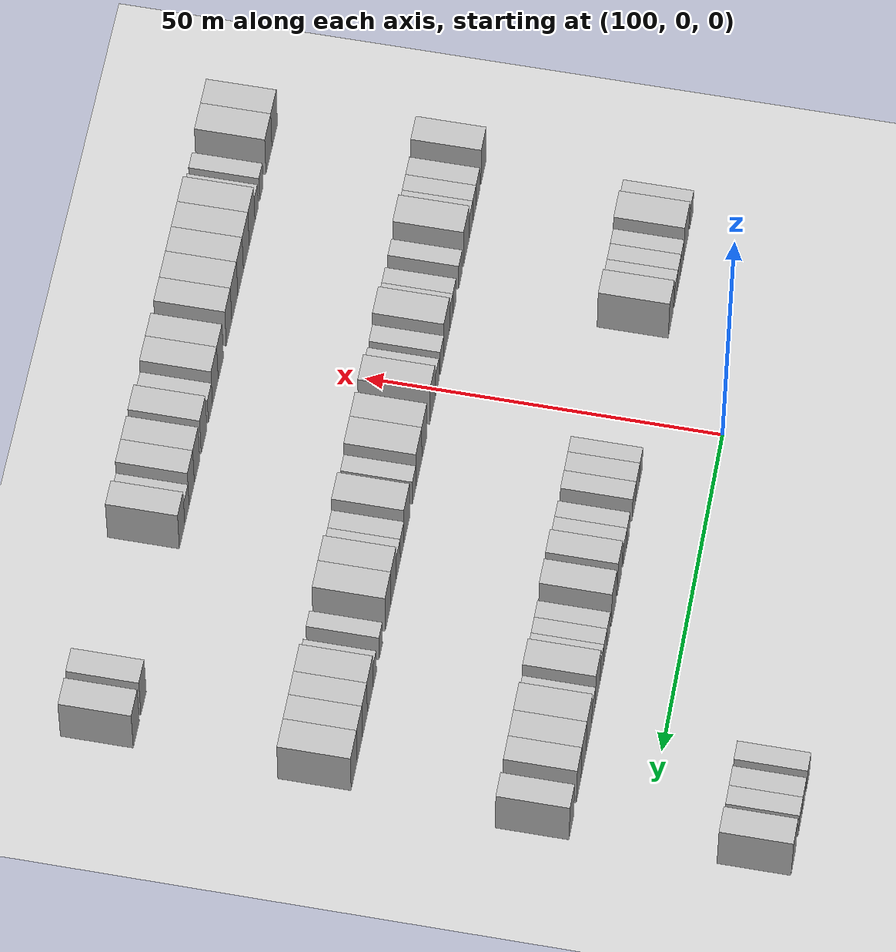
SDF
<sdf version="1.6">
 <world name="default">
  <include>
   <name>ground_plane_2</name>
   <uri>model://HANNAS_ground_plane</uri>
   <pose>100 0 0  0 0 0</pose>
  </include>
  <model name="building_578">
   <static>1</static>
   <pose>85.0000 51.3219 0 0.000000 0.000000 0.000000</pose>
   <link name="link">
    <pose>0 0 3.00 0 0 0</pose>
    <collision name="collision"><geometry><box><size>10.0000 2.8344 6.0000</size></box></geometry></collision>
    <visual name="visual">
     <cast_shadows>0</cast_shadows>
     <geometry><box><size>10.0000 2.8344 6.0000</size></box></geometry>
     <material>
      <script>
       <uri>model://HANNAS_wall/materials/scripts</uri>
       <uri>model://HANNAS_wall/materials/textures</uri>
       <name>vrc/HANNAS_wall</name>
      </script>
     </material>
    </visual>
   </link>
  </model>
  <model name="building_579">
   <static>1</static>
   <pose>85.0000 55.2294 0 0.000000 0.000000 0.000000</pose>
   <link name="link">
    <pose>0 0 3.00 0 0 0</pose>
    <collision name="collision"><geometry><box><size>10.0000 2.9806 6.0000</size></box></geometry></collision>
    <visual name="visual">
     <cast_shadows>0</cast_shadows>
     <geometry><box><size>10.0000 2.9806 6.0000</size></box></geometry>
     <material>
      <script>
       <uri>model://HANNAS_wall/materials/scripts</uri>
       <uri>model://HANNAS_wall/materials/textures</uri>
       <name>vrc/HANNAS_wall</name>
      </script>
     </material>
    </visual>
   </link>
  </model>
  <model name="building_580">
   <static>1</static>
   <pose>85.0000 58.1530 0 0.000000 0.000000 0.000000</pose>
   <link name="link">
    <pose>0 0 3.00 0 0 0</pose>
    <collision name="collision"><geometry><box><size>10.0000 2.8664 6.0000</size></box></geometry></collision>
    <visual name="visual">
     <cast_shadows>0</cast_shadows>
     <geometry><box><size>10.0000 2.8664 6.0000</size></box></geometry>
     <material>
      <script>
       <uri>model://HANNAS_wall/materials/scripts</uri>
       <uri>model://HANNAS_wall/materials/textures</uri>
       <name>vrc/HANNAS_wall</name>
      </script>
     </material>
    </visual>
   </link>
  </model>
  <model name="building_581">
   <static>1</static>
   <pose>85.0000 63.5341 0 0.000000 0.000000 0.000000</pose>
   <link name="link">
    <pose>0 0 4.50 0 0 0</pose>
    <collision name="collision"><geometry><box><size>10.0000 3.8959 9.0000</size></box></geometry></collision>
    <visual name="visual">
     <cast_shadows>0</cast_shadows>
     <geometry><box><size>10.0000 3.8959 9.0000</size></box></geometry>
     <material>
      <script>
       <uri>model://HANNAS_wall/materials/scripts</uri>
       <uri>model://HANNAS_wall/materials/textures</uri>
       <name>vrc/HANNAS_wall</name>
      </script>
     </material>
    </visual>
   </link>
  </model>
  <model name="building_797">
   <static>1</static>
   <pose>115.0000 -33.3763 0 0.000000 0.000000 0.000000</pose>
   <link name="link">
    <pose>0 0 3.00 0 0 0</pose>
    <collision name="collision"><geometry><box><size>10.0000 2.7929 6.0000</size></box></geometry></collision>
    <visual name="visual">
     <cast_shadows>0</cast_shadows>
     <geometry><box><size>10.0000 2.7929 6.0000</size></box></geometry>
     <material>
      <script>
       <uri>model://HANNAS_wall/materials/scripts</uri>
       <uri>model://HANNAS_wall/materials/textures</uri>
       <name>vrc/HANNAS_wall</name>
      </script>
     </material>
    </visual>
   </link>
  </model>
  <model name="building_798">
   <static>1</static>
   <pose>115.0000 -28.7784 0 0.000000 0.000000 0.000000</pose>
   <link name="link">
    <pose>0 0 4.50 0 0 0</pose>
    <collision name="collision"><geometry><box><size>10.0000 4.4030 9.0000</size></box></geometry></collision>
    <visual name="visual">
     <cast_shadows>0</cast_shadows>
     <geometry><box><size>10.0000 4.4030 9.0000</size></box></geometry>
     <material>
      <script>
       <uri>model://HANNAS_wall/materials/scripts</uri>
       <uri>model://HANNAS_wall/materials/textures</uri>
       <name>vrc/HANNAS_wall</name>
      </script>
     </material>
    </visual>
   </link>
  </model>
  <model name="building_799">
   <static>1</static>
   <pose>115.0000 -25.3609 0 0.000000 0.000000 0.000000</pose>
   <link name="link">
    <pose>0 0 3.00 0 0 0</pose>
    <collision name="collision"><geometry><box><size>10.0000 2.4319 6.0000</size></box></geometry></collision>
    <visual name="visual">
     <cast_shadows>0</cast_shadows>
     <geometry><box><size>10.0000 2.4319 6.0000</size></box></geometry>
     <material>
      <script>
       <uri>model://HANNAS_wall/materials/scripts</uri>
       <uri>model://HANNAS_wall/materials/textures</uri>
       <name>vrc/HANNAS_wall</name>
      </script>
     </material>
    </visual>
   </link>
  </model>
  <model name="building_800">
   <static>1</static>
   <pose>115.0000 -22.8334 0 0.000000 0.000000 0.000000</pose>
   <link name="link">
    <pose>0 0 3.00 0 0 0</pose>
    <collision name="collision"><geometry><box><size>10.0000 2.6231 6.0000</size></box></geometry></collision>
    <visual name="visual">
     <cast_shadows>0</cast_shadows>
     <geometry><box><size>10.0000 2.6231 6.0000</size></box></geometry>
     <material>
      <script>
       <uri>model://HANNAS_wall/materials/scripts</uri>
       <uri>model://HANNAS_wall/materials/textures</uri>
       <name>vrc/HANNAS_wall</name>
      </script>
     </material>
    </visual>
   </link>
  </model>
  <model name="building_801">
   <static>1</static>
   <pose>115.0000 -20.2376 0 0.000000 0.000000 0.000000</pose>
   <link name="link">
    <pose>0 0 3.00 0 0 0</pose>
    <collision name="collision"><geometry><box><size>10.0000 2.5683 6.0000</size></box></geometry></collision>
    <visual name="visual">
     <cast_shadows>0</cast_shadows>
     <geometry><box><size>10.0000 2.5683 6.0000</size></box></geometry>
     <material>
      <script>
       <uri>model://HANNAS_wall/materials/scripts</uri>
       <uri>model://HANNAS_wall/materials/textures</uri>
       <name>vrc/HANNAS_wall</name>
      </script>
     </material>
    </visual>
   </link>
  </model>
  <model name="building_802">
   <static>1</static>
   <pose>115.0000 -16.0023 0 0.000000 0.000000 0.000000</pose>
   <link name="link">
    <pose>0 0 4.50 0 0 0</pose>
    <collision name="collision"><geometry><box><size>10.0000 3.9023 9.0000</size></box></geometry></collision>
    <visual name="visual">
     <cast_shadows>0</cast_shadows>
     <geometry><box><size>10.0000 3.9023 9.0000</size></box></geometry>
     <material>
      <script>
       <uri>model://HANNAS_wall/materials/scripts</uri>
       <uri>model://HANNAS_wall/materials/textures</uri>
       <name>vrc/HANNAS_wall</name>
      </script>
     </material>
    </visual>
   </link>
  </model>
  <model name="building_803">
   <static>1</static>
   <pose>115.0000 8.6658 0 0.000000 0.000000 0.000000</pose>
   <link name="link">
    <pose>0 0 3.00 0 0 0</pose>
    <collision name="collision"><geometry><box><size>10.0000 2.4779 6.0000</size></box></geometry></collision>
    <visual name="visual">
     <cast_shadows>0</cast_shadows>
     <geometry><box><size>10.0000 2.4779 6.0000</size></box></geometry>
     <material>
      <script>
       <uri>model://HANNAS_wall/materials/scripts</uri>
       <uri>model://HANNAS_wall/materials/textures</uri>
       <name>vrc/HANNAS_wall</name>
      </script>
     </material>
    </visual>
   </link>
  </model>
  <model name="building_804">
   <static>1</static>
   <pose>115.0000 11.3984 0 0.000000 0.000000 0.000000</pose>
   <link name="link">
    <pose>0 0 3.00 0 0 0</pose>
    <collision name="collision"><geometry><box><size>10.0000 2.9875 6.0000</size></box></geometry></collision>
    <visual name="visual">
     <cast_shadows>0</cast_shadows>
     <geometry><box><size>10.0000 2.9875 6.0000</size></box></geometry>
     <material>
      <script>
       <uri>model://HANNAS_wall/materials/scripts</uri>
       <uri>model://HANNAS_wall/materials/textures</uri>
       <name>vrc/HANNAS_wall</name>
      </script>
     </material>
    </visual>
   </link>
  </model>
  <model name="building_805">
   <static>1</static>
   <pose>115.0000 14.3344 0 0.000000 0.000000 0.000000</pose>
   <link name="link">
    <pose>0 0 3.00 0 0 0</pose>
    <collision name="collision"><geometry><box><size>10.0000 2.8844 6.0000</size></box></geometry></collision>
    <visual name="visual">
     <cast_shadows>0</cast_shadows>
     <geometry><box><size>10.0000 2.8844 6.0000</size></box></geometry>
     <material>
      <script>
       <uri>model://HANNAS_wall/materials/scripts</uri>
       <uri>model://HANNAS_wall/materials/textures</uri>
       <name>vrc/HANNAS_wall</name>
      </script>
     </material>
    </visual>
   </link>
  </model>
  <model name="building_806">
   <static>1</static>
   <pose>115.0000 19.0334 0 0.000000 0.000000 0.000000</pose>
   <link name="link">
    <pose>0 0 3.00 0 0 0</pose>
    <collision name="collision"><geometry><box><size>10.0000 2.5138 6.0000</size></box></geometry></collision>
    <visual name="visual">
     <cast_shadows>0</cast_shadows>
     <geometry><box><size>10.0000 2.5138 6.0000</size></box></geometry>
     <material>
      <script>
       <uri>model://HANNAS_wall/materials/scripts</uri>
       <uri>model://HANNAS_wall/materials/textures</uri>
       <name>vrc/HANNAS_wall</name>
      </script>
     </material>
    </visual>
   </link>
  </model>
  <model name="building_807">
   <static>1</static>
   <pose>115.0000 21.6853 0 0.000000 0.000000 0.000000</pose>
   <link name="link">
    <pose>0 0 3.00 0 0 0</pose>
    <collision name="collision"><geometry><box><size>10.0000 2.7900 6.0000</size></box></geometry></collision>
    <visual name="visual">
     <cast_shadows>0</cast_shadows>
     <geometry><box><size>10.0000 2.7900 6.0000</size></box></geometry>
     <material>
      <script>
       <uri>model://HANNAS_wall/materials/scripts</uri>
       <uri>model://HANNAS_wall/materials/textures</uri>
       <name>vrc/HANNAS_wall</name>
      </script>
     </material>
    </visual>
   </link>
  </model>
  <model name="building_808">
   <static>1</static>
   <pose>115.0000 25.9015 0 0.000000 0.000000 0.000000</pose>
   <link name="link">
    <pose>0 0 4.50 0 0 0</pose>
    <collision name="collision"><geometry><box><size>10.0000 3.6422 9.0000</size></box></geometry></collision>
    <visual name="visual">
     <cast_shadows>0</cast_shadows>
     <geometry><box><size>10.0000 3.6422 9.0000</size></box></geometry>
     <material>
      <script>
       <uri>model://HANNAS_wall/materials/scripts</uri>
       <uri>model://HANNAS_wall/materials/textures</uri>
       <name>vrc/HANNAS_wall</name>
      </script>
     </material>
    </visual>
   </link>
  </model>
  <model name="building_809">
   <static>1</static>
   <pose>115.0000 30.6529 0 0.000000 0.000000 0.000000</pose>
   <link name="link">
    <pose>0 0 4.50 0 0 0</pose>
    <collision name="collision"><geometry><box><size>10.0000 3.8607 9.0000</size></box></geometry></collision>
    <visual name="visual">
     <cast_shadows>0</cast_shadows>
     <geometry><box><size>10.0000 3.8607 9.0000</size></box></geometry>
     <material>
      <script>
       <uri>model://HANNAS_wall/materials/scripts</uri>
       <uri>model://HANNAS_wall/materials/textures</uri>
       <name>vrc/HANNAS_wall</name>
      </script>
     </material>
    </visual>
   </link>
  </model>
  <model name="building_810">
   <static>1</static>
   <pose>115.0000 34.8802 0 0.000000 0.000000 0.000000</pose>
   <link name="link">
    <pose>0 0 3.00 0 0 0</pose>
    <collision name="collision"><geometry><box><size>10.0000 2.5939 6.0000</size></box></geometry></collision>
    <visual name="visual">
     <cast_shadows>0</cast_shadows>
     <geometry><box><size>10.0000 2.5939 6.0000</size></box></geometry>
     <material>
      <script>
       <uri>model://HANNAS_wall/materials/scripts</uri>
       <uri>model://HANNAS_wall/materials/textures</uri>
       <name>vrc/HANNAS_wall</name>
      </script>
     </material>
    </visual>
   </link>
  </model>
  <model name="building_811">
   <static>1</static>
   <pose>115.0000 37.4185 0 0.000000 0.000000 0.000000</pose>
   <link name="link">
    <pose>0 0 3.00 0 0 0</pose>
    <collision name="collision"><geometry><box><size>10.0000 2.4828 6.0000</size></box></geometry></collision>
    <visual name="visual">
     <cast_shadows>0</cast_shadows>
     <geometry><box><size>10.0000 2.4828 6.0000</size></box></geometry>
     <material>
      <script>
       <uri>model://HANNAS_wall/materials/scripts</uri>
       <uri>model://HANNAS_wall/materials/textures</uri>
       <name>vrc/HANNAS_wall</name>
      </script>
     </material>
    </visual>
   </link>
  </model>
  <model name="building_812">
   <static>1</static>
   <pose>115.0000 39.9613 0 0.000000 0.000000 0.000000</pose>
   <link name="link">
    <pose>0 0 3.00 0 0 0</pose>
    <collision name="collision"><geometry><box><size>10.0000 2.6028 6.0000</size></box></geometry></collision>
    <visual name="visual">
     <cast_shadows>0</cast_shadows>
     <geometry><box><size>10.0000 2.6028 6.0000</size></box></geometry>
     <material>
      <script>
       <uri>model://HANNAS_wall/materials/scripts</uri>
       <uri>model://HANNAS_wall/materials/textures</uri>
       <name>vrc/HANNAS_wall</name>
      </script>
     </material>
    </visual>
   </link>
  </model>
  <model name="building_813">
   <static>1</static>
   <pose>115.0000 43.2933 0 0.000000 0.000000 0.000000</pose>
   <link name="link">
    <pose>0 0 4.50 0 0 0</pose>
    <collision name="collision"><geometry><box><size>10.0000 4.0612 9.0000</size></box></geometry></collision>
    <visual name="visual">
     <cast_shadows>0</cast_shadows>
     <geometry><box><size>10.0000 4.0612 9.0000</size></box></geometry>
     <material>
      <script>
       <uri>model://HANNAS_wall/materials/scripts</uri>
       <uri>model://HANNAS_wall/materials/textures</uri>
       <name>vrc/HANNAS_wall</name>
      </script>
     </material>
    </visual>
   </link>
  </model>
  <model name="building_814">
   <static>1</static>
   <pose>115.0000 46.6836 0 0.000000 0.000000 0.000000</pose>
   <link name="link">
    <pose>0 0 3.00 0 0 0</pose>
    <collision name="collision"><geometry><box><size>10.0000 2.7195 6.0000</size></box></geometry></collision>
    <visual name="visual">
     <cast_shadows>0</cast_shadows>
     <geometry><box><size>10.0000 2.7195 6.0000</size></box></geometry>
     <material>
      <script>
       <uri>model://HANNAS_wall/materials/scripts</uri>
       <uri>model://HANNAS_wall/materials/textures</uri>
       <name>vrc/HANNAS_wall</name>
      </script>
     </material>
    </visual>
   </link>
  </model>
  <model name="building_815">
   <static>1</static>
   <pose>115.0000 50.1747 0 0.000000 0.000000 0.000000</pose>
   <link name="link">
    <pose>0 0 4.50 0 0 0</pose>
    <collision name="collision"><geometry><box><size>10.0000 4.2629 9.0000</size></box></geometry></collision>
    <visual name="visual">
     <cast_shadows>0</cast_shadows>
     <geometry><box><size>10.0000 4.2629 9.0000</size></box></geometry>
     <material>
      <script>
       <uri>model://HANNAS_wall/materials/scripts</uri>
       <uri>model://HANNAS_wall/materials/textures</uri>
       <name>vrc/HANNAS_wall</name>
      </script>
     </material>
    </visual>
   </link>
  </model>
  <model name="building_816">
   <static>1</static>
   <pose>115.0000 54.2908 0 0.000000 0.000000 0.000000</pose>
   <link name="link">
    <pose>0 0 4.50 0 0 0</pose>
    <collision name="collision"><geometry><box><size>10.0000 3.9693 9.0000</size></box></geometry></collision>
    <visual name="visual">
     <cast_shadows>0</cast_shadows>
     <geometry><box><size>10.0000 3.9693 9.0000</size></box></geometry>
     <material>
      <script>
       <uri>model://HANNAS_wall/materials/scripts</uri>
       <uri>model://HANNAS_wall/materials/textures</uri>
       <name>vrc/HANNAS_wall</name>
      </script>
     </material>
    </visual>
   </link>
  </model>
  <model name="building_817">
   <static>1</static>
   <pose>115.0000 58.0973 0 0.000000 0.000000 0.000000</pose>
   <link name="link">
    <pose>0 0 4.50 0 0 0</pose>
    <collision name="collision"><geometry><box><size>10.0000 3.6437 9.0000</size></box></geometry></collision>
    <visual name="visual">
     <cast_shadows>0</cast_shadows>
     <geometry><box><size>10.0000 3.6437 9.0000</size></box></geometry>
     <material>
      <script>
       <uri>model://HANNAS_wall/materials/scripts</uri>
       <uri>model://HANNAS_wall/materials/textures</uri>
       <name>vrc/HANNAS_wall</name>
      </script>
     </material>
    </visual>
   </link>
  </model>
  <model name="building_818">
   <static>1</static>
   <pose>115.0000 63.7436 0 0.000000 0.000000 0.000000</pose>
   <link name="link">
    <pose>0 0 4.50 0 0 0</pose>
    <collision name="collision"><geometry><box><size>10.0000 3.6490 9.0000</size></box></geometry></collision>
    <visual name="visual">
     <cast_shadows>0</cast_shadows>
     <geometry><box><size>10.0000 3.6490 9.0000</size></box></geometry>
     <material>
      <script>
       <uri>model://HANNAS_wall/materials/scripts</uri>
       <uri>model://HANNAS_wall/materials/textures</uri>
       <name>vrc/HANNAS_wall</name>
      </script>
     </material>
    </visual>
   </link>
  </model>
  <model name="building_1028">
   <static>1</static>
   <pose>145.0000 -36.0096 0 0.000000 0.000000 0.000000</pose>
   <link name="link">
    <pose>0 0 4.50 0 0 0</pose>
    <collision name="collision"><geometry><box><size>10.0000 3.9123 9.0000</size></box></geometry></collision>
    <visual name="visual">
     <cast_shadows>0</cast_shadows>
     <geometry><box><size>10.0000 3.9123 9.0000</size></box></geometry>
     <material>
      <script>
       <uri>model://HANNAS_wall/materials/scripts</uri>
       <uri>model://HANNAS_wall/materials/textures</uri>
       <name>vrc/HANNAS_wall</name>
      </script>
     </material>
    </visual>
   </link>
  </model>
  <model name="building_1029">
   <static>1</static>
   <pose>145.0000 -31.5873 0 0.000000 0.000000 0.000000</pose>
   <link name="link">
    <pose>0 0 3.00 0 0 0</pose>
    <collision name="collision"><geometry><box><size>10.0000 2.9323 6.0000</size></box></geometry></collision>
    <visual name="visual">
     <cast_shadows>0</cast_shadows>
     <geometry><box><size>10.0000 2.9323 6.0000</size></box></geometry>
     <material>
      <script>
       <uri>model://HANNAS_wall/materials/scripts</uri>
       <uri>model://HANNAS_wall/materials/textures</uri>
       <name>vrc/HANNAS_wall</name>
      </script>
     </material>
    </visual>
   </link>
  </model>
  <model name="building_1030">
   <static>1</static>
   <pose>145.0000 -28.8142 0 0.000000 0.000000 0.000000</pose>
   <link name="link">
    <pose>0 0 3.00 0 0 0</pose>
    <collision name="collision"><geometry><box><size>10.0000 2.6141 6.0000</size></box></geometry></collision>
    <visual name="visual">
     <cast_shadows>0</cast_shadows>
     <geometry><box><size>10.0000 2.6141 6.0000</size></box></geometry>
     <material>
      <script>
       <uri>model://HANNAS_wall/materials/scripts</uri>
       <uri>model://HANNAS_wall/materials/textures</uri>
       <name>vrc/HANNAS_wall</name>
      </script>
     </material>
    </visual>
   </link>
  </model>
  <model name="building_1031">
   <static>1</static>
   <pose>145.0000 -26.1430 0 0.000000 0.000000 0.000000</pose>
   <link name="link">
    <pose>0 0 3.00 0 0 0</pose>
    <collision name="collision"><geometry><box><size>10.0000 2.7283 6.0000</size></box></geometry></collision>
    <visual name="visual">
     <cast_shadows>0</cast_shadows>
     <geometry><box><size>10.0000 2.7283 6.0000</size></box></geometry>
     <material>
      <script>
       <uri>model://HANNAS_wall/materials/scripts</uri>
       <uri>model://HANNAS_wall/materials/textures</uri>
       <name>vrc/HANNAS_wall</name>
      </script>
     </material>
    </visual>
   </link>
  </model>
  <model name="building_1032">
   <static>1</static>
   <pose>145.0000 -22.5599 0 0.000000 0.000000 0.000000</pose>
   <link name="link">
    <pose>0 0 4.50 0 0 0</pose>
    <collision name="collision"><geometry><box><size>10.0000 4.4378 9.0000</size></box></geometry></collision>
    <visual name="visual">
     <cast_shadows>0</cast_shadows>
     <geometry><box><size>10.0000 4.4378 9.0000</size></box></geometry>
     <material>
      <script>
       <uri>model://HANNAS_wall/materials/scripts</uri>
       <uri>model://HANNAS_wall/materials/textures</uri>
       <name>vrc/HANNAS_wall</name>
      </script>
     </material>
    </visual>
   </link>
  </model>
  <model name="building_1033">
   <static>1</static>
   <pose>145.0000 -17.9839 0 0.000000 0.000000 0.000000</pose>
   <link name="link">
    <pose>0 0 3.00 0 0 0</pose>
    <collision name="collision"><geometry><box><size>10.0000 2.7142 6.0000</size></box></geometry></collision>
    <visual name="visual">
     <cast_shadows>0</cast_shadows>
     <geometry><box><size>10.0000 2.7142 6.0000</size></box></geometry>
     <material>
      <script>
       <uri>model://HANNAS_wall/materials/scripts</uri>
       <uri>model://HANNAS_wall/materials/textures</uri>
       <name>vrc/HANNAS_wall</name>
      </script>
     </material>
    </visual>
   </link>
  </model>
  <model name="building_1034">
   <static>1</static>
   <pose>145.0000 -13.3608 0 0.000000 0.000000 0.000000</pose>
   <link name="link">
    <pose>0 0 3.00 0 0 0</pose>
    <collision name="collision"><geometry><box><size>10.0000 2.5320 6.0000</size></box></geometry></collision>
    <visual name="visual">
     <cast_shadows>0</cast_shadows>
     <geometry><box><size>10.0000 2.5320 6.0000</size></box></geometry>
     <material>
      <script>
       <uri>model://HANNAS_wall/materials/scripts</uri>
       <uri>model://HANNAS_wall/materials/textures</uri>
       <name>vrc/HANNAS_wall</name>
      </script>
     </material>
    </visual>
   </link>
  </model>
  <model name="building_1035">
   <static>1</static>
   <pose>145.0000 -10.8366 0 0.000000 0.000000 0.000000</pose>
   <link name="link">
    <pose>0 0 3.00 0 0 0</pose>
    <collision name="collision"><geometry><box><size>10.0000 2.5162 6.0000</size></box></geometry></collision>
    <visual name="visual">
     <cast_shadows>0</cast_shadows>
     <geometry><box><size>10.0000 2.5162 6.0000</size></box></geometry>
     <material>
      <script>
       <uri>model://HANNAS_wall/materials/scripts</uri>
       <uri>model://HANNAS_wall/materials/textures</uri>
       <name>vrc/HANNAS_wall</name>
      </script>
     </material>
    </visual>
   </link>
  </model>
  <model name="building_1036">
   <static>1</static>
   <pose>145.0000 -7.3967 0 0.000000 0.000000 0.000000</pose>
   <link name="link">
    <pose>0 0 4.50 0 0 0</pose>
    <collision name="collision"><geometry><box><size>10.0000 4.3637 9.0000</size></box></geometry></collision>
    <visual name="visual">
     <cast_shadows>0</cast_shadows>
     <geometry><box><size>10.0000 4.3637 9.0000</size></box></geometry>
     <material>
      <script>
       <uri>model://HANNAS_wall/materials/scripts</uri>
       <uri>model://HANNAS_wall/materials/textures</uri>
       <name>vrc/HANNAS_wall</name>
      </script>
     </material>
    </visual>
   </link>
  </model>
  <model name="building_1037">
   <static>1</static>
   <pose>145.0000 -3.8418 0 0.000000 0.000000 0.000000</pose>
   <link name="link">
    <pose>0 0 3.00 0 0 0</pose>
    <collision name="collision"><geometry><box><size>10.0000 2.7462 6.0000</size></box></geometry></collision>
    <visual name="visual">
     <cast_shadows>0</cast_shadows>
     <geometry><box><size>10.0000 2.7462 6.0000</size></box></geometry>
     <material>
      <script>
       <uri>model://HANNAS_wall/materials/scripts</uri>
       <uri>model://HANNAS_wall/materials/textures</uri>
       <name>vrc/HANNAS_wall</name>
      </script>
     </material>
    </visual>
   </link>
  </model>
  <model name="building_1038">
   <static>1</static>
   <pose>145.0000 0.0305 0 0.000000 0.000000 0.000000</pose>
   <link name="link">
    <pose>0 0 3.00 0 0 0</pose>
    <collision name="collision"><geometry><box><size>10.0000 2.9982 6.0000</size></box></geometry></collision>
    <visual name="visual">
     <cast_shadows>0</cast_shadows>
     <geometry><box><size>10.0000 2.9982 6.0000</size></box></geometry>
     <material>
      <script>
       <uri>model://HANNAS_wall/materials/scripts</uri>
       <uri>model://HANNAS_wall/materials/textures</uri>
       <name>vrc/HANNAS_wall</name>
      </script>
     </material>
    </visual>
   </link>
  </model>
  <model name="building_1039">
   <static>1</static>
   <pose>145.0000 3.5681 0 0.000000 0.000000 0.000000</pose>
   <link name="link">
    <pose>0 0 4.50 0 0 0</pose>
    <collision name="collision"><geometry><box><size>10.0000 4.0770 9.0000</size></box></geometry></collision>
    <visual name="visual">
     <cast_shadows>0</cast_shadows>
     <geometry><box><size>10.0000 4.0770 9.0000</size></box></geometry>
     <material>
      <script>
       <uri>model://HANNAS_wall/materials/scripts</uri>
       <uri>model://HANNAS_wall/materials/textures</uri>
       <name>vrc/HANNAS_wall</name>
      </script>
     </material>
    </visual>
   </link>
  </model>
  <model name="building_1040">
   <static>1</static>
   <pose>145.0000 9.5515 0 0.000000 0.000000 0.000000</pose>
   <link name="link">
    <pose>0 0 4.50 0 0 0</pose>
    <collision name="collision"><geometry><box><size>10.0000 3.8898 9.0000</size></box></geometry></collision>
    <visual name="visual">
     <cast_shadows>0</cast_shadows>
     <geometry><box><size>10.0000 3.8898 9.0000</size></box></geometry>
     <material>
      <script>
       <uri>model://HANNAS_wall/materials/scripts</uri>
       <uri>model://HANNAS_wall/materials/textures</uri>
       <name>vrc/HANNAS_wall</name>
      </script>
     </material>
    </visual>
   </link>
  </model>
  <model name="building_1041">
   <static>1</static>
   <pose>145.0000 13.6989 0 0.000000 0.000000 0.000000</pose>
   <link name="link">
    <pose>0 0 4.50 0 0 0</pose>
    <collision name="collision"><geometry><box><size>10.0000 4.4049 9.0000</size></box></geometry></collision>
    <visual name="visual">
     <cast_shadows>0</cast_shadows>
     <geometry><box><size>10.0000 4.4049 9.0000</size></box></geometry>
     <material>
      <script>
       <uri>model://HANNAS_wall/materials/scripts</uri>
       <uri>model://HANNAS_wall/materials/textures</uri>
       <name>vrc/HANNAS_wall</name>
      </script>
     </material>
    </visual>
   </link>
  </model>
  <model name="building_1042">
   <static>1</static>
   <pose>145.0000 17.2104 0 0.000000 0.000000 0.000000</pose>
   <link name="link">
    <pose>0 0 3.00 0 0 0</pose>
    <collision name="collision"><geometry><box><size>10.0000 2.6182 6.0000</size></box></geometry></collision>
    <visual name="visual">
     <cast_shadows>0</cast_shadows>
     <geometry><box><size>10.0000 2.6182 6.0000</size></box></geometry>
     <material>
      <script>
       <uri>model://HANNAS_wall/materials/scripts</uri>
       <uri>model://HANNAS_wall/materials/textures</uri>
       <name>vrc/HANNAS_wall</name>
      </script>
     </material>
    </visual>
   </link>
  </model>
  <model name="building_1043">
   <static>1</static>
   <pose>145.0000 22.6629 0 0.000000 0.000000 0.000000</pose>
   <link name="link">
    <pose>0 0 4.50 0 0 0</pose>
    <collision name="collision"><geometry><box><size>10.0000 4.2868 9.0000</size></box></geometry></collision>
    <visual name="visual">
     <cast_shadows>0</cast_shadows>
     <geometry><box><size>10.0000 4.2868 9.0000</size></box></geometry>
     <material>
      <script>
       <uri>model://HANNAS_wall/materials/scripts</uri>
       <uri>model://HANNAS_wall/materials/textures</uri>
       <name>vrc/HANNAS_wall</name>
      </script>
     </material>
    </visual>
   </link>
  </model>
  <model name="building_1044">
   <static>1</static>
   <pose>145.0000 26.2124 0 0.000000 0.000000 0.000000</pose>
   <link name="link">
    <pose>0 0 3.00 0 0 0</pose>
    <collision name="collision"><geometry><box><size>10.0000 2.8121 6.0000</size></box></geometry></collision>
    <visual name="visual">
     <cast_shadows>0</cast_shadows>
     <geometry><box><size>10.0000 2.8121 6.0000</size></box></geometry>
     <material>
      <script>
       <uri>model://HANNAS_wall/materials/scripts</uri>
       <uri>model://HANNAS_wall/materials/textures</uri>
       <name>vrc/HANNAS_wall</name>
      </script>
     </material>
    </visual>
   </link>
  </model>
  <model name="building_1045">
   <static>1</static>
   <pose>145.0000 29.1026 0 0.000000 0.000000 0.000000</pose>
   <link name="link">
    <pose>0 0 3.00 0 0 0</pose>
    <collision name="collision"><geometry><box><size>10.0000 2.9683 6.0000</size></box></geometry></collision>
    <visual name="visual">
     <cast_shadows>0</cast_shadows>
     <geometry><box><size>10.0000 2.9683 6.0000</size></box></geometry>
     <material>
      <script>
       <uri>model://HANNAS_wall/materials/scripts</uri>
       <uri>model://HANNAS_wall/materials/textures</uri>
       <name>vrc/HANNAS_wall</name>
      </script>
     </material>
    </visual>
   </link>
  </model>
  <model name="building_1046">
   <static>1</static>
   <pose>145.0000 32.5562 0 0.000000 0.000000 0.000000</pose>
   <link name="link">
    <pose>0 0 4.50 0 0 0</pose>
    <collision name="collision"><geometry><box><size>10.0000 3.9389 9.0000</size></box></geometry></collision>
    <visual name="visual">
     <cast_shadows>0</cast_shadows>
     <geometry><box><size>10.0000 3.9389 9.0000</size></box></geometry>
     <material>
      <script>
       <uri>model://HANNAS_wall/materials/scripts</uri>
       <uri>model://HANNAS_wall/materials/textures</uri>
       <name>vrc/HANNAS_wall</name>
      </script>
     </material>
    </visual>
   </link>
  </model>
  <model name="building_1047">
   <static>1</static>
   <pose>145.0000 36.6225 0 0.000000 0.000000 0.000000</pose>
   <link name="link">
    <pose>0 0 4.50 0 0 0</pose>
    <collision name="collision"><geometry><box><size>10.0000 4.1936 9.0000</size></box></geometry></collision>
    <visual name="visual">
     <cast_shadows>0</cast_shadows>
     <geometry><box><size>10.0000 4.1936 9.0000</size></box></geometry>
     <material>
      <script>
       <uri>model://HANNAS_wall/materials/scripts</uri>
       <uri>model://HANNAS_wall/materials/textures</uri>
       <name>vrc/HANNAS_wall</name>
      </script>
     </material>
    </visual>
   </link>
  </model>
  <model name="building_1048">
   <static>1</static>
   <pose>145.0000 41.9549 0 0.000000 0.000000 0.000000</pose>
   <link name="link">
    <pose>0 0 3.00 0 0 0</pose>
    <collision name="collision"><geometry><box><size>10.0000 2.4714 6.0000</size></box></geometry></collision>
    <visual name="visual">
     <cast_shadows>0</cast_shadows>
     <geometry><box><size>10.0000 2.4714 6.0000</size></box></geometry>
     <material>
      <script>
       <uri>model://HANNAS_wall/materials/scripts</uri>
       <uri>model://HANNAS_wall/materials/textures</uri>
       <name>vrc/HANNAS_wall</name>
      </script>
     </material>
    </visual>
   </link>
  </model>
  <model name="building_1049">
   <static>1</static>
   <pose>145.0000 46.4250 0 0.000000 0.000000 0.000000</pose>
   <link name="link">
    <pose>0 0 3.00 0 0 0</pose>
    <collision name="collision"><geometry><box><size>10.0000 2.4686 6.0000</size></box></geometry></collision>
    <visual name="visual">
     <cast_shadows>0</cast_shadows>
     <geometry><box><size>10.0000 2.4686 6.0000</size></box></geometry>
     <material>
      <script>
       <uri>model://HANNAS_wall/materials/scripts</uri>
       <uri>model://HANNAS_wall/materials/textures</uri>
       <name>vrc/HANNAS_wall</name>
      </script>
     </material>
    </visual>
   </link>
  </model>
  <model name="building_1050">
   <static>1</static>
   <pose>145.0000 49.7519 0 0.000000 0.000000 0.000000</pose>
   <link name="link">
    <pose>0 0 4.50 0 0 0</pose>
    <collision name="collision"><geometry><box><size>10.0000 4.1853 9.0000</size></box></geometry></collision>
    <visual name="visual">
     <cast_shadows>0</cast_shadows>
     <geometry><box><size>10.0000 4.1853 9.0000</size></box></geometry>
     <material>
      <script>
       <uri>model://HANNAS_wall/materials/scripts</uri>
       <uri>model://HANNAS_wall/materials/textures</uri>
       <name>vrc/HANNAS_wall</name>
      </script>
     </material>
    </visual>
   </link>
  </model>
  <model name="building_1051">
   <static>1</static>
   <pose>145.0000 53.6469 0 0.000000 0.000000 0.000000</pose>
   <link name="link">
    <pose>0 0 4.50 0 0 0</pose>
    <collision name="collision"><geometry><box><size>10.0000 3.6048 9.0000</size></box></geometry></collision>
    <visual name="visual">
     <cast_shadows>0</cast_shadows>
     <geometry><box><size>10.0000 3.6048 9.0000</size></box></geometry>
     <material>
      <script>
       <uri>model://HANNAS_wall/materials/scripts</uri>
       <uri>model://HANNAS_wall/materials/textures</uri>
       <name>vrc/HANNAS_wall</name>
      </script>
     </material>
    </visual>
   </link>
  </model>
  <model name="building_1052">
   <static>1</static>
   <pose>145.0000 57.3172 0 0.000000 0.000000 0.000000</pose>
   <link name="link">
    <pose>0 0 4.50 0 0 0</pose>
    <collision name="collision"><geometry><box><size>10.0000 3.7358 9.0000</size></box></geometry></collision>
    <visual name="visual">
     <cast_shadows>0</cast_shadows>
     <geometry><box><size>10.0000 3.7358 9.0000</size></box></geometry>
     <material>
      <script>
       <uri>model://HANNAS_wall/materials/scripts</uri>
       <uri>model://HANNAS_wall/materials/textures</uri>
       <name>vrc/HANNAS_wall</name>
      </script>
     </material>
    </visual>
   </link>
  </model>
  <model name="building_1053">
   <static>1</static>
   <pose>145.0000 61.3653 0 0.000000 0.000000 0.000000</pose>
   <link name="link">
    <pose>0 0 4.50 0 0 0</pose>
    <collision name="collision"><geometry><box><size>10.0000 4.3604 9.0000</size></box></geometry></collision>
    <visual name="visual">
     <cast_shadows>0</cast_shadows>
     <geometry><box><size>10.0000 4.3604 9.0000</size></box></geometry>
     <material>
      <script>
       <uri>model://HANNAS_wall/materials/scripts</uri>
       <uri>model://HANNAS_wall/materials/textures</uri>
       <name>vrc/HANNAS_wall</name>
      </script>
     </material>
    </visual>
   </link>
  </model>
  <model name="building_1261">
   <static>1</static>
   <pose>175.0000 -36.7111 0 0.000000 0.000000 0.000000</pose>
   <link name="link">
    <pose>0 0 4.50 0 0 0</pose>
    <collision name="collision"><geometry><box><size>10.0000 4.0521 9.0000</size></box></geometry></collision>
    <visual name="visual">
     <cast_shadows>0</cast_shadows>
     <geometry><box><size>10.0000 4.0521 9.0000</size></box></geometry>
     <material>
      <script>
       <uri>model://HANNAS_wall/materials/scripts</uri>
       <uri>model://HANNAS_wall/materials/textures</uri>
       <name>vrc/HANNAS_wall</name>
      </script>
     </material>
    </visual>
   </link>
  </model>
  <model name="building_1262">
   <static>1</static>
   <pose>175.0000 -32.4874 0 0.000000 0.000000 0.000000</pose>
   <link name="link">
    <pose>0 0 4.50 0 0 0</pose>
    <collision name="collision"><geometry><box><size>10.0000 4.3953 9.0000</size></box></geometry></collision>
    <visual name="visual">
     <cast_shadows>0</cast_shadows>
     <geometry><box><size>10.0000 4.3953 9.0000</size></box></geometry>
     <material>
      <script>
       <uri>model://HANNAS_wall/materials/scripts</uri>
       <uri>model://HANNAS_wall/materials/textures</uri>
       <name>vrc/HANNAS_wall</name>
      </script>
     </material>
    </visual>
   </link>
  </model>
  <model name="building_1263">
   <static>1</static>
   <pose>175.0000 -27.0038 0 0.000000 0.000000 0.000000</pose>
   <link name="link">
    <pose>0 0 3.00 0 0 0</pose>
    <collision name="collision"><geometry><box><size>10.0000 2.5719 6.0000</size></box></geometry></collision>
    <visual name="visual">
     <cast_shadows>0</cast_shadows>
     <geometry><box><size>10.0000 2.5719 6.0000</size></box></geometry>
     <material>
      <script>
       <uri>model://HANNAS_wall/materials/scripts</uri>
       <uri>model://HANNAS_wall/materials/textures</uri>
       <name>vrc/HANNAS_wall</name>
      </script>
     </material>
    </visual>
   </link>
  </model>
  <model name="building_1264">
   <static>1</static>
   <pose>175.0000 -23.5151 0 0.000000 0.000000 0.000000</pose>
   <link name="link">
    <pose>0 0 3.00 0 0 0</pose>
    <collision name="collision"><geometry><box><size>10.0000 2.4055 6.0000</size></box></geometry></collision>
    <visual name="visual">
     <cast_shadows>0</cast_shadows>
     <geometry><box><size>10.0000 2.4055 6.0000</size></box></geometry>
     <material>
      <script>
       <uri>model://HANNAS_wall/materials/scripts</uri>
       <uri>model://HANNAS_wall/materials/textures</uri>
       <name>vrc/HANNAS_wall</name>
      </script>
     </material>
    </visual>
   </link>
  </model>
  <model name="building_1265">
   <static>1</static>
   <pose>175.0000 -20.2292 0 0.000000 0.000000 0.000000</pose>
   <link name="link">
    <pose>0 0 4.50 0 0 0</pose>
    <collision name="collision"><geometry><box><size>10.0000 4.1663 9.0000</size></box></geometry></collision>
    <visual name="visual">
     <cast_shadows>0</cast_shadows>
     <geometry><box><size>10.0000 4.1663 9.0000</size></box></geometry>
     <material>
      <script>
       <uri>model://HANNAS_wall/materials/scripts</uri>
       <uri>model://HANNAS_wall/materials/textures</uri>
       <name>vrc/HANNAS_wall</name>
      </script>
     </material>
    </visual>
   </link>
  </model>
  <model name="building_1266">
   <static>1</static>
   <pose>175.0000 -16.0677 0 0.000000 0.000000 0.000000</pose>
   <link name="link">
    <pose>0 0 4.50 0 0 0</pose>
    <collision name="collision"><geometry><box><size>10.0000 4.1565 9.0000</size></box></geometry></collision>
    <visual name="visual">
     <cast_shadows>0</cast_shadows>
     <geometry><box><size>10.0000 4.1565 9.0000</size></box></geometry>
     <material>
      <script>
       <uri>model://HANNAS_wall/materials/scripts</uri>
       <uri>model://HANNAS_wall/materials/textures</uri>
       <name>vrc/HANNAS_wall</name>
      </script>
     </material>
    </visual>
   </link>
  </model>
  <model name="building_1267">
   <static>1</static>
   <pose>175.0000 -11.9608 0 0.000000 0.000000 0.000000</pose>
   <link name="link">
    <pose>0 0 4.50 0 0 0</pose>
    <collision name="collision"><geometry><box><size>10.0000 4.0574 9.0000</size></box></geometry></collision>
    <visual name="visual">
     <cast_shadows>0</cast_shadows>
     <geometry><box><size>10.0000 4.0574 9.0000</size></box></geometry>
     <material>
      <script>
       <uri>model://HANNAS_wall/materials/scripts</uri>
       <uri>model://HANNAS_wall/materials/textures</uri>
       <name>vrc/HANNAS_wall</name>
      </script>
     </material>
    </visual>
   </link>
  </model>
  <model name="building_1268">
   <static>1</static>
   <pose>175.0000 -7.7751 0 0.000000 0.000000 0.000000</pose>
   <link name="link">
    <pose>0 0 4.50 0 0 0</pose>
    <collision name="collision"><geometry><box><size>10.0000 4.3140 9.0000</size></box></geometry></collision>
    <visual name="visual">
     <cast_shadows>0</cast_shadows>
     <geometry><box><size>10.0000 4.3140 9.0000</size></box></geometry>
     <material>
      <script>
       <uri>model://HANNAS_wall/materials/scripts</uri>
       <uri>model://HANNAS_wall/materials/textures</uri>
       <name>vrc/HANNAS_wall</name>
      </script>
     </material>
    </visual>
   </link>
  </model>
  <model name="building_1269">
   <static>1</static>
   <pose>175.0000 -3.6617 0 0.000000 0.000000 0.000000</pose>
   <link name="link">
    <pose>0 0 4.50 0 0 0</pose>
    <collision name="collision"><geometry><box><size>10.0000 3.9127 9.0000</size></box></geometry></collision>
    <visual name="visual">
     <cast_shadows>0</cast_shadows>
     <geometry><box><size>10.0000 3.9127 9.0000</size></box></geometry>
     <material>
      <script>
       <uri>model://HANNAS_wall/materials/scripts</uri>
       <uri>model://HANNAS_wall/materials/textures</uri>
       <name>vrc/HANNAS_wall</name>
      </script>
     </material>
    </visual>
   </link>
  </model>
  <model name="building_1270">
   <static>1</static>
   <pose>175.0000 2.1492 0 0.000000 0.000000 0.000000</pose>
   <link name="link">
    <pose>0 0 4.50 0 0 0</pose>
    <collision name="collision"><geometry><box><size>10.0000 3.7090 9.0000</size></box></geometry></collision>
    <visual name="visual">
     <cast_shadows>0</cast_shadows>
     <geometry><box><size>10.0000 3.7090 9.0000</size></box></geometry>
     <material>
      <script>
       <uri>model://HANNAS_wall/materials/scripts</uri>
       <uri>model://HANNAS_wall/materials/textures</uri>
       <name>vrc/HANNAS_wall</name>
      </script>
     </material>
    </visual>
   </link>
  </model>
  <model name="building_1271">
   <static>1</static>
   <pose>175.0000 6.0299 0 0.000000 0.000000 0.000000</pose>
   <link name="link">
    <pose>0 0 4.50 0 0 0</pose>
    <collision name="collision"><geometry><box><size>10.0000 4.0525 9.0000</size></box></geometry></collision>
    <visual name="visual">
     <cast_shadows>0</cast_shadows>
     <geometry><box><size>10.0000 4.0525 9.0000</size></box></geometry>
     <material>
      <script>
       <uri>model://HANNAS_wall/materials/scripts</uri>
       <uri>model://HANNAS_wall/materials/textures</uri>
       <name>vrc/HANNAS_wall</name>
      </script>
     </material>
    </visual>
   </link>
  </model>
  <model name="building_1272">
   <static>1</static>
   <pose>175.0000 9.5147 0 0.000000 0.000000 0.000000</pose>
   <link name="link">
    <pose>0 0 3.00 0 0 0</pose>
    <collision name="collision"><geometry><box><size>10.0000 2.9171 6.0000</size></box></geometry></collision>
    <visual name="visual">
     <cast_shadows>0</cast_shadows>
     <geometry><box><size>10.0000 2.9171 6.0000</size></box></geometry>
     <material>
      <script>
       <uri>model://HANNAS_wall/materials/scripts</uri>
       <uri>model://HANNAS_wall/materials/textures</uri>
       <name>vrc/HANNAS_wall</name>
      </script>
     </material>
    </visual>
   </link>
  </model>
  <model name="building_1273">
   <static>1</static>
   <pose>175.0000 13.9863 0 0.000000 0.000000 0.000000</pose>
   <link name="link">
    <pose>0 0 4.50 0 0 0</pose>
    <collision name="collision"><geometry><box><size>10.0000 4.0262 9.0000</size></box></geometry></collision>
    <visual name="visual">
     <cast_shadows>0</cast_shadows>
     <geometry><box><size>10.0000 4.0262 9.0000</size></box></geometry>
     <material>
      <script>
       <uri>model://HANNAS_wall/materials/scripts</uri>
       <uri>model://HANNAS_wall/materials/textures</uri>
       <name>vrc/HANNAS_wall</name>
      </script>
     </material>
    </visual>
   </link>
  </model>
  <model name="building_1274">
   <static>1</static>
   <pose>175.0000 18.8728 0 0.000000 0.000000 0.000000</pose>
   <link name="link">
    <pose>0 0 4.50 0 0 0</pose>
    <collision name="collision"><geometry><box><size>10.0000 3.7468 9.0000</size></box></geometry></collision>
    <visual name="visual">
     <cast_shadows>0</cast_shadows>
     <geometry><box><size>10.0000 3.7468 9.0000</size></box></geometry>
     <material>
      <script>
       <uri>model://HANNAS_wall/materials/scripts</uri>
       <uri>model://HANNAS_wall/materials/textures</uri>
       <name>vrc/HANNAS_wall</name>
      </script>
     </material>
    </visual>
   </link>
  </model>
  <model name="building_1275">
   <static>1</static>
   <pose>175.0000 22.5866 0 0.000000 0.000000 0.000000</pose>
   <link name="link">
    <pose>0 0 4.50 0 0 0</pose>
    <collision name="collision"><geometry><box><size>10.0000 3.6808 9.0000</size></box></geometry></collision>
    <visual name="visual">
     <cast_shadows>0</cast_shadows>
     <geometry><box><size>10.0000 3.6808 9.0000</size></box></geometry>
     <material>
      <script>
       <uri>model://HANNAS_wall/materials/scripts</uri>
       <uri>model://HANNAS_wall/materials/textures</uri>
       <name>vrc/HANNAS_wall</name>
      </script>
     </material>
    </visual>
   </link>
  </model>
  <model name="building_1276">
   <static>1</static>
   <pose>175.0000 25.9118 0 0.000000 0.000000 0.000000</pose>
   <link name="link">
    <pose>0 0 3.00 0 0 0</pose>
    <collision name="collision"><geometry><box><size>10.0000 2.9695 6.0000</size></box></geometry></collision>
    <visual name="visual">
     <cast_shadows>0</cast_shadows>
     <geometry><box><size>10.0000 2.9695 6.0000</size></box></geometry>
     <material>
      <script>
       <uri>model://HANNAS_wall/materials/scripts</uri>
       <uri>model://HANNAS_wall/materials/textures</uri>
       <name>vrc/HANNAS_wall</name>
      </script>
     </material>
    </visual>
   </link>
  </model>
  <model name="building_1277">
   <static>1</static>
   <pose>175.0000 29.2851 0 0.000000 0.000000 0.000000</pose>
   <link name="link">
    <pose>0 0 4.50 0 0 0</pose>
    <collision name="collision"><geometry><box><size>10.0000 3.7771 9.0000</size></box></geometry></collision>
    <visual name="visual">
     <cast_shadows>0</cast_shadows>
     <geometry><box><size>10.0000 3.7771 9.0000</size></box></geometry>
     <material>
      <script>
       <uri>model://HANNAS_wall/materials/scripts</uri>
       <uri>model://HANNAS_wall/materials/textures</uri>
       <name>vrc/HANNAS_wall</name>
      </script>
     </material>
    </visual>
   </link>
  </model>
  <model name="building_1278">
   <static>1</static>
   <pose>175.0000 55.6052 0 0.000000 0.000000 0.000000</pose>
   <link name="link">
    <pose>0 0 4.50 0 0 0</pose>
    <collision name="collision"><geometry><box><size>10.0000 3.6210 9.0000</size></box></geometry></collision>
    <visual name="visual">
     <cast_shadows>0</cast_shadows>
     <geometry><box><size>10.0000 3.6210 9.0000</size></box></geometry>
     <material>
      <script>
       <uri>model://HANNAS_wall/materials/scripts</uri>
       <uri>model://HANNAS_wall/materials/textures</uri>
       <name>vrc/HANNAS_wall</name>
      </script>
     </material>
    </visual>
   </link>
  </model>
  <model name="building_1279">
   <static>1</static>
   <pose>175.0000 60.4607 0 0.000000 0.000000 0.000000</pose>
   <link name="link">
    <pose>0 0 4.50 0 0 0</pose>
    <collision name="collision"><geometry><box><size>10.0000 4.0901 9.0000</size></box></geometry></collision>
    <visual name="visual">
     <cast_shadows>0</cast_shadows>
     <geometry><box><size>10.0000 4.0901 9.0000</size></box></geometry>
     <material>
      <script>
       <uri>model://HANNAS_wall/materials/scripts</uri>
       <uri>model://HANNAS_wall/materials/textures</uri>
       <name>vrc/HANNAS_wall</name>
      </script>
     </material>
    </visual>
   </link>
  </model>
 </world>
</sdf>
